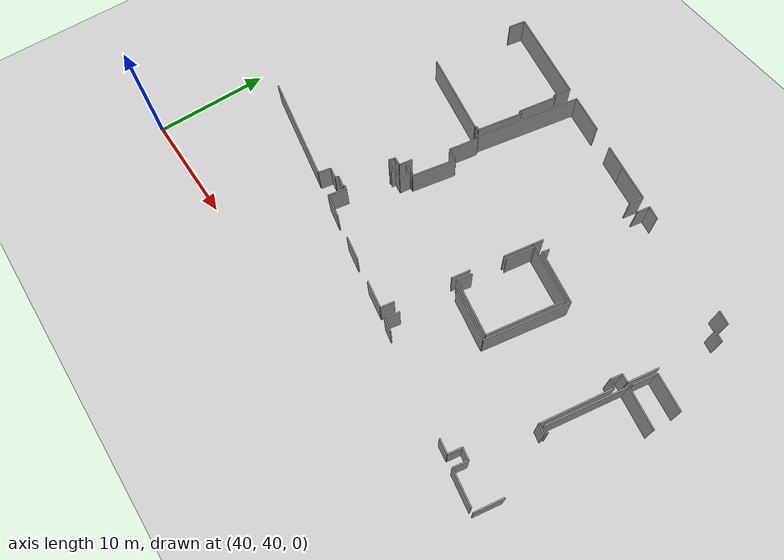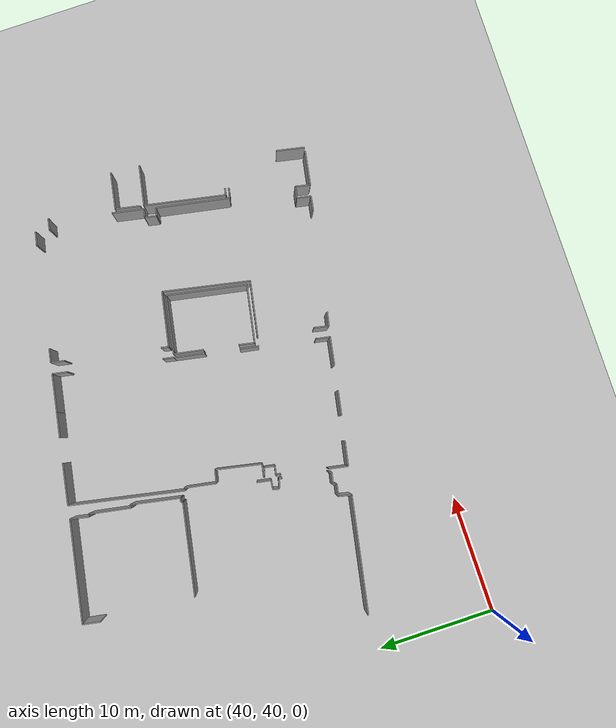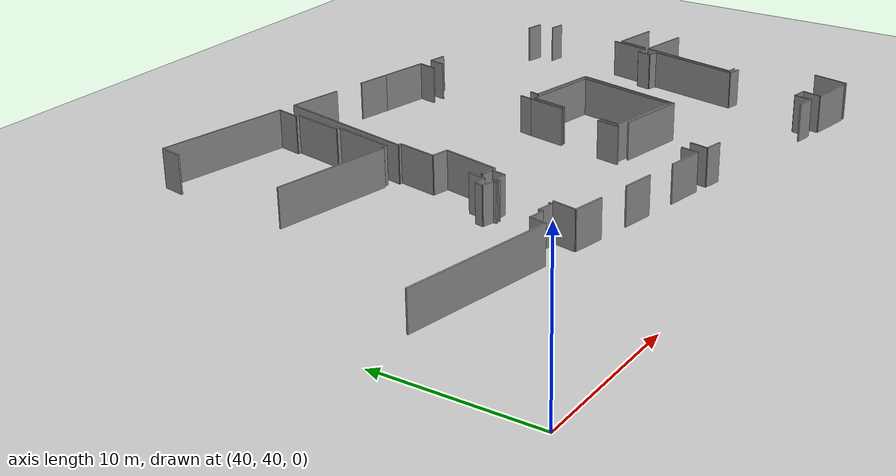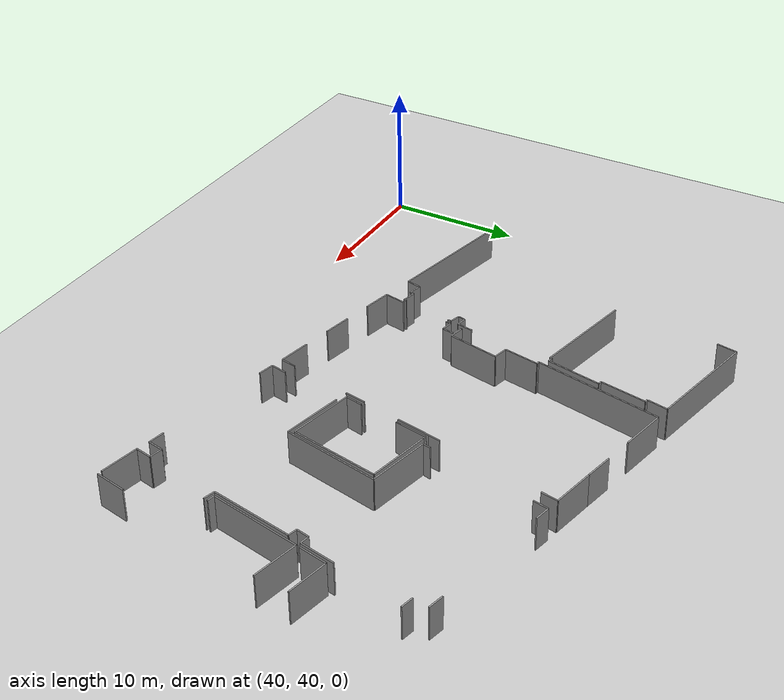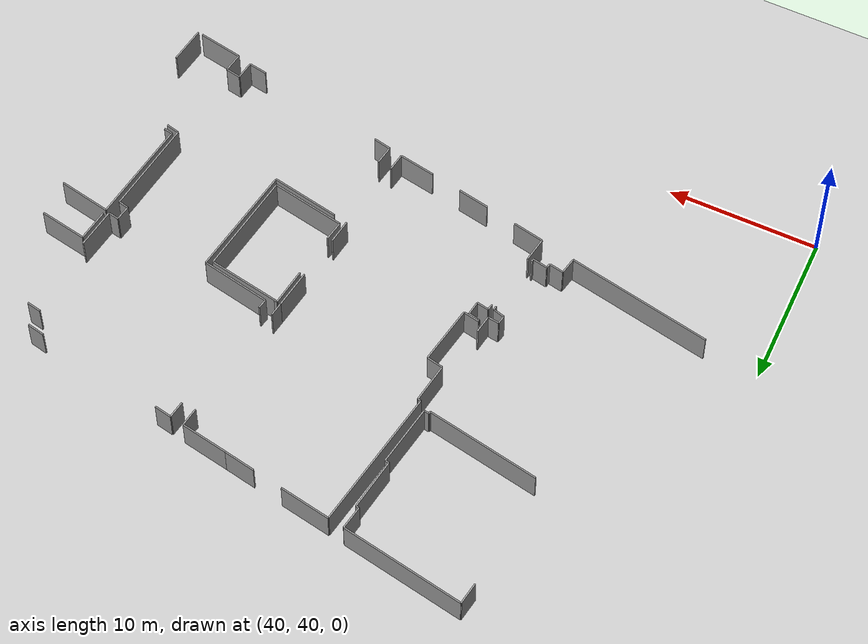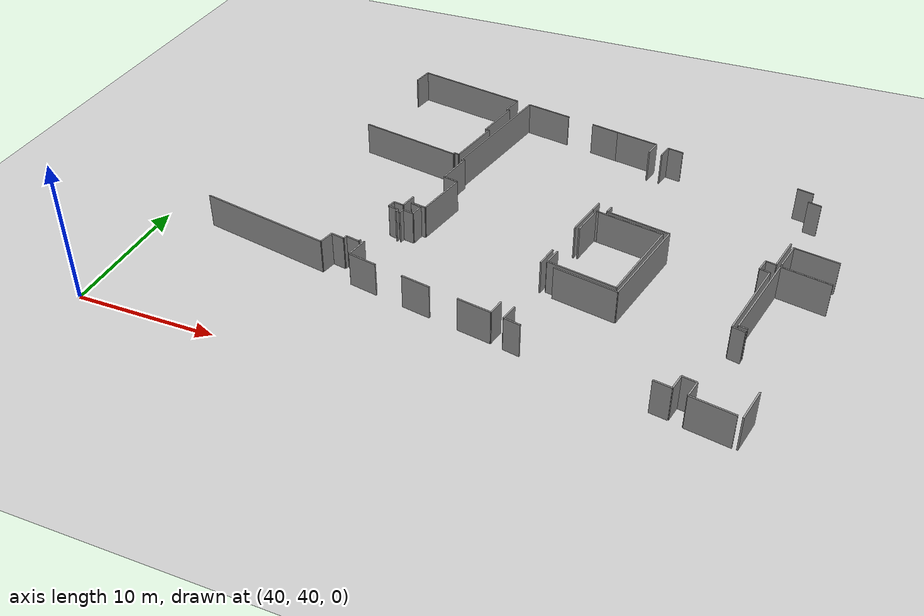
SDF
<sdf version="1.6">
 <world name="default">
  <model name="ground_plane">
   <static>1</static>
   <link name="link">
    <collision name="collision">
     <geometry><plane><normal>0 0 1</normal><size>100 100</size></plane></geometry>
     <surface><friction><ode><mu>100</mu><mu2>50</mu2></ode></friction></surface>
    </collision>
    <visual name="visual">
     <cast_shadows>0</cast_shadows>
     <geometry><plane><normal>0 0 1</normal><size>100 100</size></plane></geometry>
     <material>
      <script><uri>file://media/materials/scripts/gazebo.material</uri><name>Gazebo/Grey</name></script>
     </material>
    </visual>
   </link>
  </model>
  <model name="0510045925_40">
   <static>1</static>
   <link name="Wall_431">
    <collision name="Wall_431_Collision">
     <geometry><box><size>1.51004869206 0.1 2.5</size></box></geometry>
     <pose>0.75502434603 0 1.25 0 0 0</pose>
    </collision>
    <visual name="Wall_431_Visual">
     <pose>0.75502434603 0 1.25 0 0 0</pose>
     <geometry><box><size>1.51004869206 0.1 2.5</size></box></geometry>
     <material>
      <script><uri>file://media/materials/scripts/gazebo.material</uri><name>Gazebo/Grey</name></script>
      <ambient>1 1 1 1</ambient>
     </material>
    </visual>
    <pose>183.985990203 -29.9953554478 0 0 0 1.39304745408</pose>
   </link>
   <link name="Wall_432">
    <collision name="Wall_432_Collision">
     <geometry><box><size>8.60923568438 0.1 2.5</size></box></geometry>
     <pose>4.30461784219 0 1.25 0 0 0</pose>
    </collision>
    <visual name="Wall_432_Visual">
     <pose>4.30461784219 0 1.25 0 0 0</pose>
     <geometry><box><size>8.60923568438 0.1 2.5</size></box></geometry>
     <material>
      <script><uri>file://media/materials/scripts/gazebo.material</uri><name>Gazebo/Grey</name></script>
      <ambient>1 1 1 1</ambient>
     </material>
    </visual>
    <pose>184.252988503 -28.5090987538 0 0 0 -0.192452346354</pose>
   </link>
   <link name="Wall_433">
    <collision name="Wall_433_Collision">
     <geometry><box><size>1.56854118902 0.1 2.5</size></box></geometry>
     <pose>0.78427059451 0 1.25 0 0 0</pose>
    </collision>
    <visual name="Wall_433_Visual">
     <pose>0.78427059451 0 1.25 0 0 0</pose>
     <geometry><box><size>1.56854118902 0.1 2.5</size></box></geometry>
     <material>
      <script><uri>file://media/materials/scripts/gazebo.material</uri><name>Gazebo/Grey</name></script>
      <ambient>1 1 1 1</ambient>
     </material>
    </visual>
    <pose>192.703281643 -30.1557574681 0 0 0 -1.7675254951</pose>
   </link>
   <link name="Wall_434">
    <collision name="Wall_434_Collision">
     <geometry><box><size>0.226170429399 0.1 2.5</size></box></geometry>
     <pose>0.113085214699 0 1.25 0 0 0</pose>
    </collision>
    <visual name="Wall_434_Visual">
     <pose>0.113085214699 0 1.25 0 0 0</pose>
     <geometry><box><size>0.226170429399 0.1 2.5</size></box></geometry>
     <material>
      <script><uri>file://media/materials/scripts/gazebo.material</uri><name>Gazebo/Grey</name></script>
      <ambient>1 1 1 1</ambient>
     </material>
    </visual>
    <pose>192.396690439 -31.6940432984 0 0 0 -0.256409847279</pose>
   </link>
   <link name="Wall_435">
    <collision name="Wall_435_Collision">
     <geometry><box><size>3.49303819312 0.1 2.5</size></box></geometry>
     <pose>1.74651909656 0 1.25 0 0 0</pose>
    </collision>
    <visual name="Wall_435_Visual">
     <pose>1.74651909656 0 1.25 0 0 0</pose>
     <geometry><box><size>3.49303819312 0.1 2.5</size></box></geometry>
     <material>
      <script><uri>file://media/materials/scripts/gazebo.material</uri><name>Gazebo/Grey</name></script>
      <ambient>1 1 1 1</ambient>
     </material>
    </visual>
    <pose>192.615466613 -31.7514022487 0 0 0 -1.74939555427</pose>
   </link>
   <link name="Wall_436">
    <collision name="Wall_436_Collision">
     <geometry><box><size>0.275662808928 0.1 2.5</size></box></geometry>
     <pose>0.137831404464 0 1.25 0 0 0</pose>
    </collision>
    <visual name="Wall_436_Visual">
     <pose>0.137831404464 0 1.25 0 0 0</pose>
     <geometry><box><size>0.275662808928 0.1 2.5</size></box></geometry>
     <material>
      <script><uri>file://media/materials/scripts/gazebo.material</uri><name>Gazebo/Grey</name></script>
      <ambient>1 1 1 1</ambient>
     </material>
    </visual>
    <pose>191.994923987 -35.1888784549 0 0 0 -0.206784955276</pose>
   </link>
   <link name="Wall_437">
    <collision name="Wall_437_Collision">
     <geometry><box><size>4.12787197165 0.1 2.5</size></box></geometry>
     <pose>2.06393598583 0 1.25 0 0 0</pose>
    </collision>
    <visual name="Wall_437_Visual">
     <pose>2.06393598583 0 1.25 0 0 0</pose>
     <geometry><box><size>4.12787197165 0.1 2.5</size></box></geometry>
     <material>
      <script><uri>file://media/materials/scripts/gazebo.material</uri><name>Gazebo/Grey</name></script>
      <ambient>1 1 1 1</ambient>
     </material>
    </visual>
    <pose>192.264714094 -35.2454760031 0 0 0 -1.76194573611</pose>
   </link>
   <link name="Wall_438">
    <collision name="Wall_438_Collision">
     <geometry><box><size>0.357979517592 0.1 2.5</size></box></geometry>
     <pose>0.178989758796 0 1.25 0 0 0</pose>
    </collision>
    <visual name="Wall_438_Visual">
     <pose>0.178989758796 0 1.25 0 0 0</pose>
     <geometry><box><size>0.357979517592 0.1 2.5</size></box></geometry>
     <material>
      <script><uri>file://media/materials/scripts/gazebo.material</uri><name>Gazebo/Grey</name></script>
      <ambient>1 1 1 1</ambient>
     </material>
    </visual>
    <pose>191.480470039 -39.2981650212 0 0 0 2.94753412251</pose>
   </link>
   <link name="Wall_439">
    <collision name="Wall_439_Collision">
     <geometry><box><size>0.152586766593 0.1 2.5</size></box></geometry>
     <pose>0.0762933832965 0 1.25 0 0 0</pose>
    </collision>
    <visual name="Wall_439_Visual">
     <pose>0.0762933832965 0 1.25 0 0 0</pose>
     <geometry><box><size>0.152586766593 0.1 2.5</size></box></geometry>
     <material>
      <script><uri>file://media/materials/scripts/gazebo.material</uri><name>Gazebo/Grey</name></script>
      <ambient>1 1 1 1</ambient>
     </material>
    </visual>
    <pose>191.129209919 -39.2291312403 0 0 0 -1.73621845238</pose>
   </link>
   <link name="Wall_440">
    <collision name="Wall_440_Collision">
     <geometry><box><size>7.81180008044 0.1 2.5</size></box></geometry>
     <pose>3.90590004022 0 1.25 0 0 0</pose>
    </collision>
    <visual name="Wall_440_Visual">
     <pose>3.90590004022 0 1.25 0 0 0</pose>
     <geometry><box><size>7.81180008044 0.1 2.5</size></box></geometry>
     <material>
      <script><uri>file://media/materials/scripts/gazebo.material</uri><name>Gazebo/Grey</name></script>
      <ambient>1 1 1 1</ambient>
     </material>
    </visual>
    <pose>191.104083653 -39.3796350346 0 0 0 2.95049874155</pose>
   </link>
   <link name="Wall_443">
    <collision name="Wall_443_Collision">
     <geometry><box><size>1.19101167062 0.1 2.5</size></box></geometry>
     <pose>0.595505835312 0 1.25 0 0 0</pose>
    </collision>
    <visual name="Wall_443_Visual">
     <pose>0.595505835312 0 1.25 0 0 0</pose>
     <geometry><box><size>1.19101167062 0.1 2.5</size></box></geometry>
     <material>
      <script><uri>file://media/materials/scripts/gazebo.material</uri><name>Gazebo/Grey</name></script>
      <ambient>1 1 1 1</ambient>
     </material>
    </visual>
    <pose>190.702571001 -45.6507956651 0 0 0 -1.75185060366</pose>
   </link>
   <link name="Wall_444">
    <collision name="Wall_444_Collision">
     <geometry><box><size>0.760318213808 0.1 2.5</size></box></geometry>
     <pose>0.380159106904 0 1.25 0 0 0</pose>
    </collision>
    <visual name="Wall_444_Visual">
     <pose>0.380159106904 0 1.25 0 0 0</pose>
     <geometry><box><size>0.760318213808 0.1 2.5</size></box></geometry>
     <material>
      <script><uri>file://media/materials/scripts/gazebo.material</uri><name>Gazebo/Grey</name></script>
      <ambient>1 1 1 1</ambient>
     </material>
    </visual>
    <pose>190.488109439 -46.8223395345 0 0 0 3.00059254441</pose>
   </link>
   <link name="Wall_445">
    <collision name="Wall_445_Collision">
     <geometry><box><size>0.549448897145 0.1 2.5</size></box></geometry>
     <pose>0.274724448573 0 1.25 0 0 0</pose>
    </collision>
    <visual name="Wall_445_Visual">
     <pose>0.274724448573 0 1.25 0 0 0</pose>
     <geometry><box><size>0.549448897145 0.1 2.5</size></box></geometry>
     <material>
      <script><uri>file://media/materials/scripts/gazebo.material</uri><name>Gazebo/Grey</name></script>
      <ambient>1 1 1 1</ambient>
     </material>
    </visual>
    <pose>189.735336667 -46.7154894546 0 0 0 -1.79437529885</pose>
   </link>
   <link name="Wall_446">
    <collision name="Wall_446_Collision">
     <geometry><box><size>0.795565703535 0.1 2.5</size></box></geometry>
     <pose>0.397782851767 0 1.25 0 0 0</pose>
    </collision>
    <visual name="Wall_446_Visual">
     <pose>0.397782851767 0 1.25 0 0 0</pose>
     <geometry><box><size>0.795565703535 0.1 2.5</size></box></geometry>
     <material>
      <script><uri>file://media/materials/scripts/gazebo.material</uri><name>Gazebo/Grey</name></script>
      <ambient>1 1 1 1</ambient>
     </material>
    </visual>
    <pose>189.613512347 -47.2512626583 0 0 0 -0.267651040963</pose>
   </link>
   <link name="Wall_447">
    <collision name="Wall_447_Collision">
     <geometry><box><size>0.262405954594 0.1 2.5</size></box></geometry>
     <pose>0.131202977297 0 1.25 0 0 0</pose>
    </collision>
    <visual name="Wall_447_Visual">
     <pose>0.131202977297 0 1.25 0 0 0</pose>
     <geometry><box><size>0.262405954594 0.1 2.5</size></box></geometry>
     <material>
      <script><uri>file://media/materials/scripts/gazebo.material</uri><name>Gazebo/Grey</name></script>
      <ambient>1 1 1 1</ambient>
     </material>
    </visual>
    <pose>190.380751758 -47.4616634096 0 0 0 -1.73499095775</pose>
   </link>
   <link name="Wall_448">
    <collision name="Wall_448_Collision">
     <geometry><box><size>0.201088622889 0.1 2.5</size></box></geometry>
     <pose>0.100544311445 0 1.25 0 0 0</pose>
    </collision>
    <visual name="Wall_448_Visual">
     <pose>0.100544311445 0 1.25 0 0 0</pose>
     <geometry><box><size>0.201088622889 0.1 2.5</size></box></geometry>
     <material>
      <script><uri>file://media/materials/scripts/gazebo.material</uri><name>Gazebo/Grey</name></script>
      <ambient>1 1 1 1</ambient>
     </material>
    </visual>
    <pose>189.5952387 -51.5443009061 0 0 0 -1.76769683718</pose>
   </link>
   <link name="Wall_449">
    <collision name="Wall_449_Collision">
     <geometry><box><size>1.03167485339 0.1 2.5</size></box></geometry>
     <pose>0.515837426695 0 1.25 0 0 0</pose>
    </collision>
    <visual name="Wall_449_Visual">
     <pose>0.515837426695 0 1.25 0 0 0</pose>
     <geometry><box><size>1.03167485339 0.1 2.5</size></box></geometry>
     <material>
      <script><uri>file://media/materials/scripts/gazebo.material</uri><name>Gazebo/Grey</name></script>
      <ambient>1 1 1 1</ambient>
     </material>
    </visual>
    <pose>189.555899596 -51.7415040227 0 0 0 2.9429909381</pose>
   </link>
   <link name="Wall_450">
    <collision name="Wall_450_Collision">
     <geometry><box><size>0.30288831238 0.1 2.5</size></box></geometry>
     <pose>0.15144415619 0 1.25 0 0 0</pose>
    </collision>
    <visual name="Wall_450_Visual">
     <pose>0.15144415619 0 1.25 0 0 0</pose>
     <geometry><box><size>0.30288831238 0.1 2.5</size></box></geometry>
     <material>
      <script><uri>file://media/materials/scripts/gazebo.material</uri><name>Gazebo/Grey</name></script>
      <ambient>1 1 1 1</ambient>
     </material>
    </visual>
    <pose>188.544503947 -51.5379558894 0 0 0 -1.80073547353</pose>
   </link>
   <link name="Wall_451">
    <collision name="Wall_451_Collision">
     <geometry><box><size>0.990628830482 0.1 2.5</size></box></geometry>
     <pose>0.495314415241 0 1.25 0 0 0</pose>
    </collision>
    <visual name="Wall_451_Visual">
     <pose>0.495314415241 0 1.25 0 0 0</pose>
     <geometry><box><size>0.990628830482 0.1 2.5</size></box></geometry>
     <material>
      <script><uri>file://media/materials/scripts/gazebo.material</uri><name>Gazebo/Grey</name></script>
      <ambient>1 1 1 1</ambient>
     </material>
    </visual>
    <pose>188.475470166 -51.8328722621 0 0 0 2.95032705414</pose>
   </link>
   <link name="Wall_452">
    <collision name="Wall_452_Collision">
     <geometry><box><size>1.10036053214 0.1 2.5</size></box></geometry>
     <pose>0.550180266072 0 1.25 0 0 0</pose>
    </collision>
    <visual name="Wall_452_Visual">
     <pose>0.550180266072 0 1.25 0 0 0</pose>
     <geometry><box><size>1.10036053214 0.1 2.5</size></box></geometry>
     <material>
      <script><uri>file://media/materials/scripts/gazebo.material</uri><name>Gazebo/Grey</name></script>
      <ambient>1 1 1 1</ambient>
     </material>
    </visual>
    <pose>187.502906018 -51.6445521687 0 0 0 -1.79501924223</pose>
   </link>
   <link name="Wall_453">
    <collision name="Wall_453_Collision">
     <geometry><box><size>9.86923206593 0.1 2.5</size></box></geometry>
     <pose>4.93461603296 0 1.25 0 0 0</pose>
    </collision>
    <visual name="Wall_453_Visual">
     <pose>4.93461603296 0 1.25 0 0 0</pose>
     <geometry><box><size>9.86923206593 0.1 2.5</size></box></geometry>
     <material>
      <script><uri>file://media/materials/scripts/gazebo.material</uri><name>Gazebo/Grey</name></script>
      <ambient>1 1 1 1</ambient>
     </material>
    </visual>
    <pose>187.258242177 -52.7173675795 0 0 0 2.95214051959</pose>
   </link>
   <link name="Wall_525">
    <collision name="Wall_525_Collision">
     <geometry><box><size>4.74024572749 0.1 2.5</size></box></geometry>
     <pose>2.37012286374 0 1.25 0 0 0</pose>
    </collision>
    <visual name="Wall_525_Visual">
     <pose>2.37012286374 0 1.25 0 0 0</pose>
     <geometry><box><size>4.74024572749 0.1 2.5</size></box></geometry>
     <material>
      <script><uri>file://media/materials/scripts/gazebo.material</uri><name>Gazebo/Grey</name></script>
      <ambient>1 1 1 1</ambient>
     </material>
    </visual>
    <pose>203.127128753 -42.5158498515 0 0 0 -0.186548449353</pose>
   </link>
   <link name="Wall_526">
    <collision name="Wall_526_Collision">
     <geometry><box><size>6.76536760051 0.1 2.5</size></box></geometry>
     <pose>3.38268380025 0 1.25 0 0 0</pose>
    </collision>
    <visual name="Wall_526_Visual">
     <pose>3.38268380025 0 1.25 0 0 0</pose>
     <geometry><box><size>6.76536760051 0.1 2.5</size></box></geometry>
     <material>
      <script><uri>file://media/materials/scripts/gazebo.material</uri><name>Gazebo/Grey</name></script>
      <ambient>1 1 1 1</ambient>
     </material>
    </visual>
    <pose>207.785132357 -43.3950153549 0 0 0 -1.75910557526</pose>
   </link>
   <link name="Wall_527">
    <collision name="Wall_527_Collision">
     <geometry><box><size>4.92655197553 0.1 2.5</size></box></geometry>
     <pose>2.46327598776 0 1.25 0 0 0</pose>
    </collision>
    <visual name="Wall_527_Visual">
     <pose>2.46327598776 0 1.25 0 0 0</pose>
     <geometry><box><size>4.92655197553 0.1 2.5</size></box></geometry>
     <material>
      <script><uri>file://media/materials/scripts/gazebo.material</uri><name>Gazebo/Grey</name></script>
      <ambient>1 1 1 1</ambient>
     </material>
    </visual>
    <pose>206.518667039 -50.0407857669 0 0 0 2.95274458497</pose>
   </link>
   <link name="Wall_528">
    <collision name="Wall_528_Collision">
     <geometry><box><size>1.31937979695 0.1 2.5</size></box></geometry>
     <pose>0.659689898476 0 1.25 0 0 0</pose>
    </collision>
    <visual name="Wall_528_Visual">
     <pose>0.659689898476 0 1.25 0 0 0</pose>
     <geometry><box><size>1.31937979695 0.1 2.5</size></box></geometry>
     <material>
      <script><uri>file://media/materials/scripts/gazebo.material</uri><name>Gazebo/Grey</name></script>
      <ambient>1 1 1 1</ambient>
     </material>
    </visual>
    <pose>201.679703561 -49.1159361438 0 0 0 1.36053597964</pose>
   </link>
   <link name="Wall_529">
    <collision name="Wall_529_Collision">
     <geometry><box><size>2.47138411512 0.1 2.5</size></box></geometry>
     <pose>1.23569205756 0 1.25 0 0 0</pose>
    </collision>
    <visual name="Wall_529_Visual">
     <pose>1.23569205756 0 1.25 0 0 0</pose>
     <geometry><box><size>2.47138411512 0.1 2.5</size></box></geometry>
     <material>
      <script><uri>file://media/materials/scripts/gazebo.material</uri><name>Gazebo/Grey</name></script>
      <ambient>1 1 1 1</ambient>
     </material>
    </visual>
    <pose>202.486535875 -44.9033527068 0 0 0 1.39416690372</pose>
   </link>
   <link name="Wall_530">
    <collision name="Wall_530_Collision">
     <geometry><box><size>0.211282003441 0.1 2.5</size></box></geometry>
     <pose>0.105641001721 0 1.25 0 0 0</pose>
    </collision>
    <visual name="Wall_530_Visual">
     <pose>0.105641001721 0 1.25 0 0 0</pose>
     <geometry><box><size>0.211282003441 0.1 2.5</size></box></geometry>
     <material>
      <script><uri>file://media/materials/scripts/gazebo.material</uri><name>Gazebo/Grey</name></script>
      <ambient>1 1 1 1</ambient>
     </material>
    </visual>
    <pose>202.920788812 -42.4704195325 0 0 0 -0.216714550968</pose>
   </link>
   <link name="Wall_531">
    <collision name="Wall_531_Collision">
     <geometry><box><size>3.501822435 0.1 2.5</size></box></geometry>
     <pose>1.7509112175 0 1.25 0 0 0</pose>
    </collision>
    <visual name="Wall_531_Visual">
     <pose>1.7509112175 0 1.25 0 0 0</pose>
     <geometry><box><size>3.501822435 0.1 2.5</size></box></geometry>
     <material>
      <script><uri>file://media/materials/scripts/gazebo.material</uri><name>Gazebo/Grey</name></script>
      <ambient>1 1 1 1</ambient>
     </material>
    </visual>
    <pose>193.814167153 -30.3395091495 0 0 0 -0.190089572037</pose>
   </link>
   <link name="Wall_532">
    <collision name="Wall_532_Collision">
     <geometry><box><size>2.14199178741 0.1 2.5</size></box></geometry>
     <pose>1.0709958937 0 1.25 0 0 0</pose>
    </collision>
    <visual name="Wall_532_Visual">
     <pose>1.0709958937 0 1.25 0 0 0</pose>
     <geometry><box><size>2.14199178741 0.1 2.5</size></box></geometry>
     <material>
      <script><uri>file://media/materials/scripts/gazebo.material</uri><name>Gazebo/Grey</name></script>
      <ambient>1 1 1 1</ambient>
     </material>
    </visual>
    <pose>199.298545722 -31.3940509124 0 0 0 -0.19725613521</pose>
   </link>
   <link name="Wall_533">
    <collision name="Wall_533_Collision">
     <geometry><box><size>3.19912818603 0.1 2.5</size></box></geometry>
     <pose>1.59956409301 0 1.25 0 0 0</pose>
    </collision>
    <visual name="Wall_533_Visual">
     <pose>1.59956409301 0 1.25 0 0 0</pose>
     <geometry><box><size>3.19912818603 0.1 2.5</size></box></geometry>
     <material>
      <script><uri>file://media/materials/scripts/gazebo.material</uri><name>Gazebo/Grey</name></script>
      <ambient>1 1 1 1</ambient>
     </material>
    </visual>
    <pose>201.399000025 -31.8138372123 0 0 0 -0.190440746747</pose>
   </link>
   <link name="Wall_534">
    <collision name="Wall_534_Collision">
     <geometry><box><size>1.25648414673 0.1 2.5</size></box></geometry>
     <pose>0.628242073367 0 1.25 0 0 0</pose>
    </collision>
    <visual name="Wall_534_Visual">
     <pose>0.628242073367 0 1.25 0 0 0</pose>
     <geometry><box><size>1.25648414673 0.1 2.5</size></box></geometry>
     <material>
      <script><uri>file://media/materials/scripts/gazebo.material</uri><name>Gazebo/Grey</name></script>
      <ambient>1 1 1 1</ambient>
     </material>
    </visual>
    <pose>204.540290856 -32.4194055988 0 0 0 -1.76141783505</pose>
   </link>
   <link name="Wall_535">
    <collision name="Wall_535_Collision">
     <geometry><box><size>0.907846681436 0.1 2.5</size></box></geometry>
     <pose>0.453923340718 0 1.25 0 0 0</pose>
    </collision>
    <visual name="Wall_535_Visual">
     <pose>0.453923340718 0 1.25 0 0 0</pose>
     <geometry><box><size>0.907846681436 0.1 2.5</size></box></geometry>
     <material>
      <script><uri>file://media/materials/scripts/gazebo.material</uri><name>Gazebo/Grey</name></script>
      <ambient>1 1 1 1</ambient>
     </material>
    </visual>
    <pose>202.833735184 -41.4960787797 0 0 0 -1.76320261942</pose>
   </link>
   <link name="Wall_536">
    <collision name="Wall_536_Collision">
     <geometry><box><size>2.57869825154 0.1 2.5</size></box></geometry>
     <pose>1.28934912577 0 1.25 0 0 0</pose>
    </collision>
    <visual name="Wall_536_Visual">
     <pose>1.28934912577 0 1.25 0 0 0</pose>
     <geometry><box><size>2.57869825154 0.1 2.5</size></box></geometry>
     <material>
      <script><uri>file://media/materials/scripts/gazebo.material</uri><name>Gazebo/Grey</name></script>
      <ambient>1 1 1 1</ambient>
     </material>
    </visual>
    <pose>202.66013553 -42.3871729144 0 0 0 -1.75469927846</pose>
   </link>
   <link name="Wall_537">
    <collision name="Wall_537_Collision">
     <geometry><box><size>1.59186441703 0.1 2.5</size></box></geometry>
     <pose>0.795932208517 0 1.25 0 0 0</pose>
    </collision>
    <visual name="Wall_537_Visual">
     <pose>0.795932208517 0 1.25 0 0 0</pose>
     <geometry><box><size>1.59186441703 0.1 2.5</size></box></geometry>
     <material>
      <script><uri>file://media/materials/scripts/gazebo.material</uri><name>Gazebo/Grey</name></script>
      <ambient>1 1 1 1</ambient>
     </material>
    </visual>
    <pose>201.610415979 -47.7997258953 0 0 0 -1.74789756612</pose>
   </link>
   <link name="Wall_538">
    <collision name="Wall_538_Collision">
     <geometry><box><size>1.16626296425 0.1 2.5</size></box></geometry>
     <pose>0.583131482123 0 1.25 0 0 0</pose>
    </collision>
    <visual name="Wall_538_Visual">
     <pose>0.583131482123 0 1.25 0 0 0</pose>
     <geometry><box><size>1.16626296425 0.1 2.5</size></box></geometry>
     <material>
      <script><uri>file://media/materials/scripts/gazebo.material</uri><name>Gazebo/Grey</name></script>
      <ambient>1 1 1 1</ambient>
     </material>
    </visual>
    <pose>200.395218395 -54.0607344991 0 0 0 -1.7590585512</pose>
   </link>
   <link name="Wall_539">
    <collision name="Wall_539_Collision">
     <geometry><box><size>2.4168100989 0.1 2.5</size></box></geometry>
     <pose>1.20840504945 0 1.25 0 0 0</pose>
    </collision>
    <visual name="Wall_539_Visual">
     <pose>1.20840504945 0 1.25 0 0 0</pose>
     <geometry><box><size>2.4168100989 0.1 2.5</size></box></geometry>
     <material>
      <script><uri>file://media/materials/scripts/gazebo.material</uri><name>Gazebo/Grey</name></script>
      <ambient>1 1 1 1</ambient>
     </material>
    </visual>
    <pose>200.176949824 -55.2063907007 0 0 0 2.96477303388</pose>
   </link>
   <link name="Wall_540">
    <collision name="Wall_540_Collision">
     <geometry><box><size>2.09603457662 0.1 2.5</size></box></geometry>
     <pose>1.04801728831 0 1.25 0 0 0</pose>
    </collision>
    <visual name="Wall_540_Visual">
     <pose>1.04801728831 0 1.25 0 0 0</pose>
     <geometry><box><size>2.09603457662 0.1 2.5</size></box></geometry>
     <material>
      <script><uri>file://media/materials/scripts/gazebo.material</uri><name>Gazebo/Grey</name></script>
      <ambient>1 1 1 1</ambient>
     </material>
    </visual>
    <pose>195.754219436 -54.3957513769 0 0 0 2.95550087749</pose>
   </link>
   <link name="Wall_541">
    <collision name="Wall_541_Collision">
     <geometry><box><size>2.10207746667 0.1 2.5</size></box></geometry>
     <pose>1.05103873334 0 1.25 0 0 0</pose>
    </collision>
    <visual name="Wall_541_Visual">
     <pose>1.05103873334 0 1.25 0 0 0</pose>
     <geometry><box><size>2.10207746667 0.1 2.5</size></box></geometry>
     <material>
      <script><uri>file://media/materials/scripts/gazebo.material</uri><name>Gazebo/Grey</name></script>
      <ambient>1 1 1 1</ambient>
     </material>
    </visual>
    <pose>191.646963275 -53.6033857009 0 0 0 2.94632817595</pose>
   </link>
   <link name="Wall_542">
    <collision name="Wall_542_Collision">
     <geometry><box><size>1.60741721306 0.1 2.5</size></box></geometry>
     <pose>0.803708606532 0 1.25 0 0 0</pose>
    </collision>
    <visual name="Wall_542_Visual">
     <pose>0.803708606532 0 1.25 0 0 0</pose>
     <geometry><box><size>1.60741721306 0.1 2.5</size></box></geometry>
     <material>
      <script><uri>file://media/materials/scripts/gazebo.material</uri><name>Gazebo/Grey</name></script>
      <ambient>1 1 1 1</ambient>
     </material>
    </visual>
    <pose>189.584832872 -53.1955280323 0 0 0 1.38467243127</pose>
   </link>
   <link name="Wall_543">
    <collision name="Wall_543_Collision">
     <geometry><box><size>0.413268852885 0.1 2.5</size></box></geometry>
     <pose>0.206634426442 0 1.25 0 0 0</pose>
    </collision>
    <visual name="Wall_543_Visual">
     <pose>0.206634426442 0 1.25 0 0 0</pose>
     <geometry><box><size>0.413268852885 0.1 2.5</size></box></geometry>
     <material>
      <script><uri>file://media/materials/scripts/gazebo.material</uri><name>Gazebo/Grey</name></script>
      <ambient>1 1 1 1</ambient>
     </material>
    </visual>
    <pose>190.621354788 -47.7317073171 0 0 0 1.35918828143</pose>
   </link>
   <link name="Wall_544">
    <collision name="Wall_544_Collision">
     <geometry><box><size>0.819783101765 0.1 2.5</size></box></geometry>
     <pose>0.409891550883 0 1.25 0 0 0</pose>
    </collision>
    <visual name="Wall_544_Visual">
     <pose>0.409891550883 0 1.25 0 0 0</pose>
     <geometry><box><size>0.819783101765 0.1 2.5</size></box></geometry>
     <material>
      <script><uri>file://media/materials/scripts/gazebo.material</uri><name>Gazebo/Grey</name></script>
      <ambient>1 1 1 1</ambient>
     </material>
    </visual>
    <pose>190.708154615 -47.3276566585 0 0 0 -0.186527082596</pose>
   </link>
   <link name="Wall_545">
    <collision name="Wall_545_Collision">
     <geometry><box><size>0.924305644359 0.1 2.5</size></box></geometry>
     <pose>0.462152822179 0 1.25 0 0 0</pose>
    </collision>
    <visual name="Wall_545_Visual">
     <pose>0.462152822179 0 1.25 0 0 0</pose>
     <geometry><box><size>0.924305644359 0.1 2.5</size></box></geometry>
     <material>
      <script><uri>file://media/materials/scripts/gazebo.material</uri><name>Gazebo/Grey</name></script>
      <ambient>1 1 1 1</ambient>
     </material>
    </visual>
    <pose>191.513717926 -47.4796832568 0 0 0 1.39860551227</pose>
   </link>
   <link name="Wall_546">
    <collision name="Wall_546_Collision">
     <geometry><box><size>0.784672524039 0.1 2.5</size></box></geometry>
     <pose>0.392336262019 0 1.25 0 0 0</pose>
    </collision>
    <visual name="Wall_546_Visual">
     <pose>0.392336262019 0 1.25 0 0 0</pose>
     <geometry><box><size>0.784672524039 0.1 2.5</size></box></geometry>
     <material>
      <script><uri>file://media/materials/scripts/gazebo.material</uri><name>Gazebo/Grey</name></script>
      <ambient>1 1 1 1</ambient>
     </material>
    </visual>
    <pose>191.672089541 -46.5690464709 0 0 0 2.91120576818</pose>
   </link>
   <link name="Wall_547">
    <collision name="Wall_547_Collision">
     <geometry><box><size>0.0697882606838 0.1 2.5</size></box></geometry>
     <pose>0.0348941303419 0 1.25 0 0 0</pose>
    </collision>
    <visual name="Wall_547_Visual">
     <pose>0.0348941303419 0 1.25 0 0 0</pose>
     <geometry><box><size>0.0697882606838 0.1 2.5</size></box></geometry>
     <material>
      <script><uri>file://media/materials/scripts/gazebo.material</uri><name>Gazebo/Grey</name></script>
      <ambient>1 1 1 1</ambient>
     </material>
    </visual>
    <pose>190.908149539 -46.3898632014 0 0 0 1.36198899416</pose>
   </link>
   <link name="Wall_548">
    <collision name="Wall_548_Collision">
     <geometry><box><size>1.09603675378 0.1 2.5</size></box></geometry>
     <pose>0.54801837689 0 1.25 0 0 0</pose>
    </collision>
    <visual name="Wall_548_Visual">
     <pose>0.54801837689 0 1.25 0 0 0</pose>
     <geometry><box><size>1.09603675378 0.1 2.5</size></box></geometry>
     <material>
      <script><uri>file://media/materials/scripts/gazebo.material</uri><name>Gazebo/Grey</name></script>
      <ambient>1 1 1 1</ambient>
     </material>
    </visual>
    <pose>190.922616177 -46.3215908226 0 0 0 -0.194579945129</pose>
   </link>
   <link name="Wall_549">
    <collision name="Wall_549_Collision">
     <geometry><box><size>3.90014681642 0.1 2.5</size></box></geometry>
     <pose>1.95007340821 0 1.25 0 0 0</pose>
    </collision>
    <visual name="Wall_549_Visual">
     <pose>1.95007340821 0 1.25 0 0 0</pose>
     <geometry><box><size>3.90014681642 0.1 2.5</size></box></geometry>
     <material>
      <script><uri>file://media/materials/scripts/gazebo.material</uri><name>Gazebo/Grey</name></script>
      <ambient>1 1 1 1</ambient>
     </material>
    </visual>
    <pose>191.997969595 -46.5335143778 0 0 0 1.36992944493</pose>
   </link>
   <link name="Wall_550">
    <collision name="Wall_550_Collision">
     <geometry><box><size>1.12125560521 0.1 2.5</size></box></geometry>
     <pose>0.560627802603 0 1.25 0 0 0</pose>
    </collision>
    <visual name="Wall_550_Visual">
     <pose>0.560627802603 0 1.25 0 0 0</pose>
     <geometry><box><size>1.12125560521 0.1 2.5</size></box></geometry>
     <material>
      <script><uri>file://media/materials/scripts/gazebo.material</uri><name>Gazebo/Grey</name></script>
      <ambient>1 1 1 1</ambient>
     </material>
    </visual>
    <pose>192.776122433 -42.7117839649 0 0 0 2.92857059098</pose>
   </link>
   <link name="Wall_551">
    <collision name="Wall_551_Collision">
     <geometry><box><size>2.65867420474 0.1 2.5</size></box></geometry>
     <pose>1.32933710237 0 1.25 0 0 0</pose>
    </collision>
    <visual name="Wall_551_Visual">
     <pose>1.32933710237 0 1.25 0 0 0</pose>
     <geometry><box><size>2.65867420474 0.1 2.5</size></box></geometry>
     <material>
      <script><uri>file://media/materials/scripts/gazebo.material</uri><name>Gazebo/Grey</name></script>
      <ambient>1 1 1 1</ambient>
     </material>
    </visual>
    <pose>191.680211162 -42.4747341438 0 0 0 1.3912245917</pose>
   </link>
   <link name="Wall_552">
    <collision name="Wall_552_Collision">
     <geometry><box><size>0.221402934068 0.1 2.5</size></box></geometry>
     <pose>0.110701467034 0 1.25 0 0 0</pose>
    </collision>
    <visual name="Wall_552_Visual">
     <pose>0.110701467034 0 1.25 0 0 0</pose>
     <geometry><box><size>0.221402934068 0.1 2.5</size></box></geometry>
     <material>
      <script><uri>file://media/materials/scripts/gazebo.material</uri><name>Gazebo/Grey</name></script>
      <ambient>1 1 1 1</ambient>
     </material>
    </visual>
    <pose>192.155072206 -39.8588106901 0 0 0 3.01169242938</pose>
   </link>
   <link name="Wall_553">
    <collision name="Wall_553_Collision">
     <geometry><box><size>9.67476962731 0.1 2.5</size></box></geometry>
     <pose>4.83738481366 0 1.25 0 0 0</pose>
    </collision>
    <visual name="Wall_553_Visual">
     <pose>4.83738481366 0 1.25 0 0 0</pose>
     <geometry><box><size>9.67476962731 0.1 2.5</size></box></geometry>
     <material>
      <script><uri>file://media/materials/scripts/gazebo.material</uri><name>Gazebo/Grey</name></script>
      <ambient>1 1 1 1</ambient>
     </material>
    </visual>
    <pose>191.935534631 -39.8301312149 0 0 0 1.37537635757</pose>
   </link>
   <link name="Wall_554">
    <collision name="Wall_554_Collision">
     <geometry><box><size>1.23433750533 0.1 2.5</size></box></geometry>
     <pose>0.617168752663 0 1.25 0 0 0</pose>
    </collision>
    <visual name="Wall_554_Visual">
     <pose>0.617168752663 0 1.25 0 0 0</pose>
     <geometry><box><size>1.23433750533 0.1 2.5</size></box></geometry>
     <material>
      <script><uri>file://media/materials/scripts/gazebo.material</uri><name>Gazebo/Grey</name></script>
      <ambient>1 1 1 1</ambient>
     </material>
    </visual>
    <pose>201.072866171 -55.4063856247 0 0 0 1.36622289199</pose>
   </link>
   <link name="Wall_555">
    <collision name="Wall_555_Collision">
     <geometry><box><size>4.54319277265 0.1 2.5</size></box></geometry>
     <pose>2.27159638633 0 1.25 0 0 0</pose>
    </collision>
    <visual name="Wall_555_Visual">
     <pose>2.27159638633 0 1.25 0 0 0</pose>
     <geometry><box><size>4.54319277265 0.1 2.5</size></box></geometry>
     <material>
      <script><uri>file://media/materials/scripts/gazebo.material</uri><name>Gazebo/Grey</name></script>
      <ambient>1 1 1 1</ambient>
     </material>
    </visual>
    <pose>202.259130479 -49.5463820715 0 0 0 -0.191325997905</pose>
   </link>
   <link name="Wall_556">
    <collision name="Wall_556_Collision">
     <geometry><box><size>7.38607894382 0.1 2.5</size></box></geometry>
     <pose>3.69303947191 0 1.25 0 0 0</pose>
    </collision>
    <visual name="Wall_556_Visual">
     <pose>3.69303947191 0 1.25 0 0 0</pose>
     <geometry><box><size>7.38607894382 0.1 2.5</size></box></geometry>
     <material>
      <script><uri>file://media/materials/scripts/gazebo.material</uri><name>Gazebo/Grey</name></script>
      <ambient>1 1 1 1</ambient>
     </material>
    </visual>
    <pose>206.719423365 -50.410319535 0 0 0 1.37222145069</pose>
   </link>
   <link name="Wall_557">
    <collision name="Wall_557_Collision">
     <geometry><box><size>4.64231017247 0.1 2.5</size></box></geometry>
     <pose>2.32115508623 0 1.25 0 0 0</pose>
    </collision>
    <visual name="Wall_557_Visual">
     <pose>2.32115508623 0 1.25 0 0 0</pose>
     <geometry><box><size>4.64231017247 0.1 2.5</size></box></geometry>
     <material>
      <script><uri>file://media/materials/scripts/gazebo.material</uri><name>Gazebo/Grey</name></script>
      <ambient>1 1 1 1</ambient>
     </material>
    </visual>
    <pose>208.176492982 -43.1693865638 0 0 0 2.94365027659</pose>
   </link>
   <link name="Wall_558">
    <collision name="Wall_558_Collision">
     <geometry><box><size>0.628957274006 0.1 2.5</size></box></geometry>
     <pose>0.314478637003 0 1.25 0 0 0</pose>
    </collision>
    <visual name="Wall_558_Visual">
     <pose>0.314478637003 0 1.25 0 0 0</pose>
     <geometry><box><size>0.628957274006 0.1 2.5</size></box></geometry>
     <material>
      <script><uri>file://media/materials/scripts/gazebo.material</uri><name>Gazebo/Grey</name></script>
      <ambient>1 1 1 1</ambient>
     </material>
    </visual>
    <pose>203.624831857 -42.2564655719 0 0 0 1.3374643916</pose>
   </link>
   <link name="Wall_559">
    <collision name="Wall_559_Collision">
     <geometry><box><size>1.15048852032 0.1 2.5</size></box></geometry>
     <pose>0.575244260162 0 1.25 0 0 0</pose>
    </collision>
    <visual name="Wall_559_Visual">
     <pose>0.575244260162 0 1.25 0 0 0</pose>
     <geometry><box><size>1.15048852032 0.1 2.5</size></box></geometry>
     <material>
      <script><uri>file://media/materials/scripts/gazebo.material</uri><name>Gazebo/Grey</name></script>
      <ambient>1 1 1 1</ambient>
     </material>
    </visual>
    <pose>205.256770133 -33.7272404254 0 0 0 1.37115105196</pose>
   </link>
   <link name="Wall_560">
    <collision name="Wall_560_Collision">
     <geometry><box><size>1.16941178522 0.1 2.5</size></box></geometry>
     <pose>0.58470589261 0 1.25 0 0 0</pose>
    </collision>
    <visual name="Wall_560_Visual">
     <pose>0.58470589261 0 1.25 0 0 0</pose>
     <geometry><box><size>1.16941178522 0.1 2.5</size></box></geometry>
     <material>
      <script><uri>file://media/materials/scripts/gazebo.material</uri><name>Gazebo/Grey</name></script>
      <ambient>1 1 1 1</ambient>
     </material>
    </visual>
    <pose>205.484936931 -32.599604071 0 0 0 -0.20190731948</pose>
   </link>
   <link name="Wall_561">
    <collision name="Wall_561_Collision">
     <geometry><box><size>1.17081968692 0.1 2.5</size></box></geometry>
     <pose>0.585409843461 0 1.25 0 0 0</pose>
    </collision>
    <visual name="Wall_561_Visual">
     <pose>0.585409843461 0 1.25 0 0 0</pose>
     <geometry><box><size>1.17081968692 0.1 2.5</size></box></geometry>
     <material>
      <script><uri>file://media/materials/scripts/gazebo.material</uri><name>Gazebo/Grey</name></script>
      <ambient>1 1 1 1</ambient>
     </material>
    </visual>
    <pose>215.172000711 -34.4762061877 0 0 0 -0.220949631299</pose>
   </link>
   <link name="Wall_563">
    <collision name="Wall_563_Collision">
     <geometry><box><size>0.941600501198 0.1 2.5</size></box></geometry>
     <pose>0.470800250599 0 1.25 0 0 0</pose>
    </collision>
    <visual name="Wall_563_Visual">
     <pose>0.470800250599 0 1.25 0 0 0</pose>
     <geometry><box><size>0.941600501198 0.1 2.5</size></box></geometry>
     <material>
      <script><uri>file://media/materials/scripts/gazebo.material</uri><name>Gazebo/Grey</name></script>
      <ambient>1 1 1 1</ambient>
     </material>
    </visual>
    <pose>216.110301769 -35.8807390675 0 0 0 -0.213201803526</pose>
   </link>
   <link name="Wall_568">
    <collision name="Wall_568_Collision">
     <geometry><box><size>2.67692676535 0.1 2.5</size></box></geometry>
     <pose>1.33846338267 0 1.25 0 0 0</pose>
    </collision>
    <visual name="Wall_568_Visual">
     <pose>1.33846338267 0 1.25 0 0 0</pose>
     <geometry><box><size>2.67692676535 0.1 2.5</size></box></geometry>
     <material>
      <script><uri>file://media/materials/scripts/gazebo.material</uri><name>Gazebo/Grey</name></script>
      <ambient>1 1 1 1</ambient>
     </material>
    </visual>
    <pose>215.800918758 -41.257252354 0 0 0 -1.76553296132</pose>
   </link>
   <link name="Wall_569">
    <collision name="Wall_569_Collision">
     <geometry><box><size>0.69747378134 0.1 2.5</size></box></geometry>
     <pose>0.34873689067 0 1.25 0 0 0</pose>
    </collision>
    <visual name="Wall_569_Visual">
     <pose>0.34873689067 0 1.25 0 0 0</pose>
     <geometry><box><size>0.69747378134 0.1 2.5</size></box></geometry>
     <material>
      <script><uri>file://media/materials/scripts/gazebo.material</uri><name>Gazebo/Grey</name></script>
      <ambient>1 1 1 1</ambient>
     </material>
    </visual>
    <pose>215.282911601 -43.883581635 0 0 0 2.95418819719</pose>
   </link>
   <link name="Wall_570">
    <collision name="Wall_570_Collision">
     <geometry><box><size>0.984732091051 0.1 2.5</size></box></geometry>
     <pose>0.492366045526 0 1.25 0 0 0</pose>
    </collision>
    <visual name="Wall_570_Visual">
     <pose>0.492366045526 0 1.25 0 0 0</pose>
     <geometry><box><size>0.984732091051 0.1 2.5</size></box></geometry>
     <material>
      <script><uri>file://media/materials/scripts/gazebo.material</uri><name>Gazebo/Grey</name></script>
      <ambient>1 1 1 1</ambient>
     </material>
    </visual>
    <pose>214.597649806 -43.7536356945 0 0 0 -1.78532786652</pose>
   </link>
   <link name="Wall_571">
    <collision name="Wall_571_Collision">
     <geometry><box><size>0.683992227013 0.1 2.5</size></box></geometry>
     <pose>0.341996113507 0 1.25 0 0 0</pose>
    </collision>
    <visual name="Wall_571_Visual">
     <pose>0.341996113507 0 1.25 0 0 0</pose>
     <geometry><box><size>0.683992227013 0.1 2.5</size></box></geometry>
     <material>
      <script><uri>file://media/materials/scripts/gazebo.material</uri><name>Gazebo/Grey</name></script>
      <ambient>1 1 1 1</ambient>
     </material>
    </visual>
    <pose>214.388010457 -44.7157940154 0 0 0 -0.233279079969</pose>
   </link>
   <link name="Wall_572">
    <collision name="Wall_572_Collision">
     <geometry><box><size>6.21746207807 0.1 2.5</size></box></geometry>
     <pose>3.10873103903 0 1.25 0 0 0</pose>
    </collision>
    <visual name="Wall_572_Visual">
     <pose>3.10873103903 0 1.25 0 0 0</pose>
     <geometry><box><size>6.21746207807 0.1 2.5</size></box></geometry>
     <material>
      <script><uri>file://media/materials/scripts/gazebo.material</uri><name>Gazebo/Grey</name></script>
      <ambient>1 1 1 1</ambient>
     </material>
    </visual>
    <pose>215.0534758 -44.8739118296 0 0 0 -1.75699184259</pose>
   </link>
   <link name="Wall_573">
    <collision name="Wall_573_Collision">
     <geometry><box><size>0.863971350161 0.1 2.5</size></box></geometry>
     <pose>0.431985675081 0 1.25 0 0 0</pose>
    </collision>
    <visual name="Wall_573_Visual">
     <pose>0.431985675081 0 1.25 0 0 0</pose>
     <geometry><box><size>0.863971350161 0.1 2.5</size></box></geometry>
     <material>
      <script><uri>file://media/materials/scripts/gazebo.material</uri><name>Gazebo/Grey</name></script>
      <ambient>1 1 1 1</ambient>
     </material>
    </visual>
    <pose>213.902489785 -50.9839090378 0 0 0 -0.235716370116</pose>
   </link>
   <link name="Wall_577">
    <collision name="Wall_577_Collision">
     <geometry><box><size>2.90416692845 0.1 2.5</size></box></geometry>
     <pose>1.45208346422 0 1.25 0 0 0</pose>
    </collision>
    <visual name="Wall_577_Visual">
     <pose>1.45208346422 0 1.25 0 0 0</pose>
     <geometry><box><size>2.90416692845 0.1 2.5</size></box></geometry>
     <material>
      <script><uri>file://media/materials/scripts/gazebo.material</uri><name>Gazebo/Grey</name></script>
      <ambient>1 1 1 1</ambient>
     </material>
    </visual>
    <pose>215.675287429 -58.239308647 0 0 0 2.96413102623</pose>
   </link>
   <link name="Wall_578">
    <collision name="Wall_578_Collision">
     <geometry><box><size>1.24323395001 0.1 2.5</size></box></geometry>
     <pose>0.621616975006 0 1.25 0 0 0</pose>
    </collision>
    <visual name="Wall_578_Visual">
     <pose>0.621616975006 0 1.25 0 0 0</pose>
     <geometry><box><size>1.24323395001 0.1 2.5</size></box></geometry>
     <material>
      <script><uri>file://media/materials/scripts/gazebo.material</uri><name>Gazebo/Grey</name></script>
      <ambient>1 1 1 1</ambient>
     </material>
    </visual>
    <pose>212.81673054 -57.7266313038 0 0 0 1.36291108123</pose>
   </link>
   <link name="Wall_579">
    <collision name="Wall_579_Collision">
     <geometry><box><size>0.976891551578 0.1 2.5</size></box></geometry>
     <pose>0.488445775789 0 1.25 0 0 0</pose>
    </collision>
    <visual name="Wall_579_Visual">
     <pose>0.488445775789 0 1.25 0 0 0</pose>
     <geometry><box><size>0.976891551578 0.1 2.5</size></box></geometry>
     <material>
      <script><uri>file://media/materials/scripts/gazebo.material</uri><name>Gazebo/Grey</name></script>
      <ambient>1 1 1 1</ambient>
     </material>
    </visual>
    <pose>213.073323012 -56.5101647166 0 0 0 2.9560691474</pose>
   </link>
   <link name="Wall_580">
    <collision name="Wall_580_Collision">
     <geometry><box><size>1.16732083581 0.1 2.5</size></box></geometry>
     <pose>0.583660417903 0 1.25 0 0 0</pose>
    </collision>
    <visual name="Wall_580_Visual">
     <pose>0.583660417903 0 1.25 0 0 0</pose>
     <geometry><box><size>1.16732083581 0.1 2.5</size></box></geometry>
     <material>
      <script><uri>file://media/materials/scripts/gazebo.material</uri><name>Gazebo/Grey</name></script>
      <ambient>1 1 1 1</ambient>
     </material>
    </visual>
    <pose>212.113195097 -56.3299662445 0 0 0 -1.76375732591</pose>
   </link>
   <link name="Wall_581">
    <collision name="Wall_581_Collision">
     <geometry><box><size>1.21180951444 0.1 2.5</size></box></geometry>
     <pose>0.605904757221 0 1.25 0 0 0</pose>
    </collision>
    <visual name="Wall_581_Visual">
     <pose>0.605904757221 0 1.25 0 0 0</pose>
     <geometry><box><size>1.21180951444 0.1 2.5</size></box></geometry>
     <material>
      <script><uri>file://media/materials/scripts/gazebo.material</uri><name>Gazebo/Grey</name></script>
      <ambient>1 1 1 1</ambient>
     </material>
    </visual>
    <pose>211.88934291 -57.4756224461 0 0 0 2.97430921373</pose>
   </link>
   <link name="Wall_582">
    <collision name="Wall_582_Collision">
     <geometry><box><size>1.17933358656 0.1 2.5</size></box></geometry>
     <pose>0.589666793279 0 1.25 0 0 0</pose>
    </collision>
    <visual name="Wall_582_Visual">
     <pose>0.589666793279 0 1.25 0 0 0</pose>
     <geometry><box><size>1.17933358656 0.1 2.5</size></box></geometry>
     <material>
      <script><uri>file://media/materials/scripts/gazebo.material</uri><name>Gazebo/Grey</name></script>
      <ambient>1 1 1 1</ambient>
     </material>
    </visual>
    <pose>202.227659196 -55.6457196518 0 0 0 2.9372331241</pose>
   </link>
   <link name="Wall_591">
    <collision name="Wall_591_Collision">
     <geometry><box><size>2.10824487007 0.1 2.5</size></box></geometry>
     <pose>1.05412243504 0 1.25 0 0 0</pose>
    </collision>
    <visual name="Wall_591_Visual">
     <pose>1.05412243504 0 1.25 0 0 0</pose>
     <geometry><box><size>2.10824487007 0.1 2.5</size></box></geometry>
     <material>
      <script><uri>file://media/materials/scripts/gazebo.material</uri><name>Gazebo/Grey</name></script>
      <ambient>1 1 1 1</ambient>
     </material>
    </visual>
    <pose>215.614121469 -43.7054135682 0 0 0 1.37377851742</pose>
   </link>
   <link name="Wall_592">
    <collision name="Wall_592_Collision">
     <geometry><box><size>3.09318527252 0.1 2.5</size></box></geometry>
     <pose>1.54659263626 0 1.25 0 0 0</pose>
    </collision>
    <visual name="Wall_592_Visual">
     <pose>1.54659263626 0 1.25 0 0 0</pose>
     <geometry><box><size>3.09318527252 0.1 2.5</size></box></geometry>
     <material>
      <script><uri>file://media/materials/scripts/gazebo.material</uri><name>Gazebo/Grey</name></script>
      <ambient>1 1 1 1</ambient>
     </material>
    </visual>
    <pose>216.02680135 -41.6379533514 0 0 0 -0.189188734352</pose>
   </link>
   <link name="Wall_596">
    <collision name="Wall_596_Collision">
     <geometry><box><size>6.88626815346 0.1 2.5</size></box></geometry>
     <pose>3.44313407673 0 1.25 0 0 0</pose>
    </collision>
    <visual name="Wall_596_Visual">
     <pose>3.44313407673 0 1.25 0 0 0</pose>
     <geometry><box><size>6.88626815346 0.1 2.5</size></box></geometry>
     <material>
      <script><uri>file://media/materials/scripts/gazebo.material</uri><name>Gazebo/Grey</name></script>
      <ambient>1 1 1 1</ambient>
     </material>
    </visual>
    <pose>214.233953453 -50.7585340474 0 0 0 1.37629922575</pose>
   </link>
   <link name="Wall_597">
    <collision name="Wall_597_Collision">
     <geometry><box><size>3.41213736978 0.1 2.5</size></box></geometry>
     <pose>1.70606868489 0 1.25 0 0 0</pose>
    </collision>
    <visual name="Wall_597_Visual">
     <pose>1.70606868489 0 1.25 0 0 0</pose>
     <geometry><box><size>3.41213736978 0.1 2.5</size></box></geometry>
     <material>
      <script><uri>file://media/materials/scripts/gazebo.material</uri><name>Gazebo/Grey</name></script>
      <ambient>1 1 1 1</ambient>
     </material>
    </visual>
    <pose>215.56488414 -44.0021065455 0 0 0 -0.198562556636</pose>
   </link>
   <link name="Wall_609">
    <collision name="Wall_609_Collision">
     <geometry><box><size>0.573104718352 0.1 2.5</size></box></geometry>
     <pose>0.286552359176 0 1.25 0 0 0</pose>
    </collision>
    <visual name="Wall_609_Visual">
     <pose>0.286552359176 0 1.25 0 0 0</pose>
     <geometry><box><size>0.573104718352 0.1 2.5</size></box></geometry>
     <material>
      <script><uri>file://media/materials/scripts/gazebo.material</uri><name>Gazebo/Grey</name></script>
      <ambient>1 1 1 1</ambient>
     </material>
    </visual>
    <pose>214.795614325 -50.8724905459 0 0 0 2.9414178756</pose>
   </link>
   <link name="Wall_615">
    <collision name="Wall_615_Collision">
     <geometry><box><size>2.38091176209 0.1 2.5</size></box></geometry>
     <pose>1.19045588104 0 1.25 0 0 0</pose>
    </collision>
    <visual name="Wall_615_Visual">
     <pose>1.19045588104 0 1.25 0 0 0</pose>
     <geometry><box><size>2.38091176209 0.1 2.5</size></box></geometry>
     <material>
      <script><uri>file://media/materials/scripts/gazebo.material</uri><name>Gazebo/Grey</name></script>
      <ambient>1 1 1 1</ambient>
     </material>
    </visual>
    <pose>215.984924241 -58.2946371919 0 0 0 1.37185375141</pose>
   </link>
   <pose>-133.95 101.083118449 0 0 0 0</pose>
  </model>
 </world>
</sdf>
